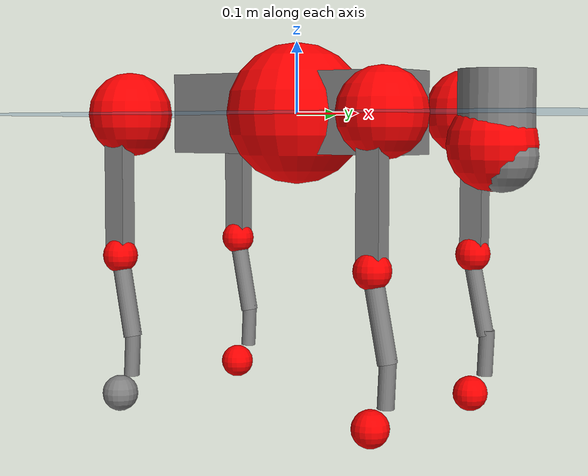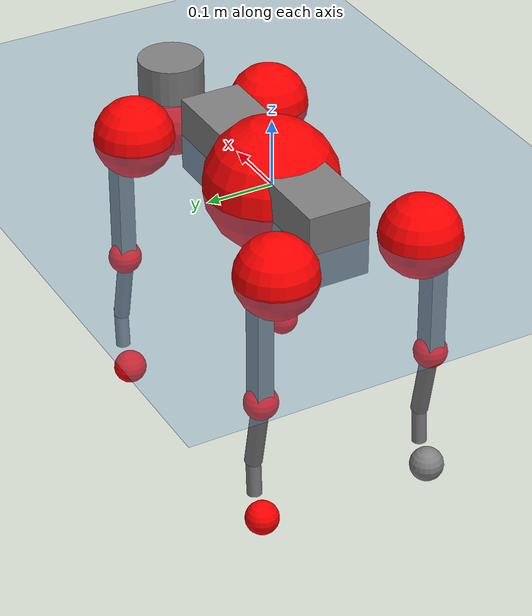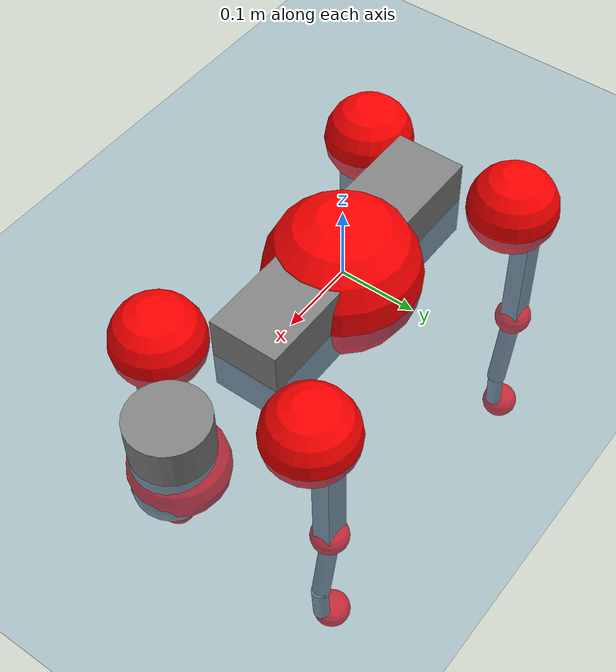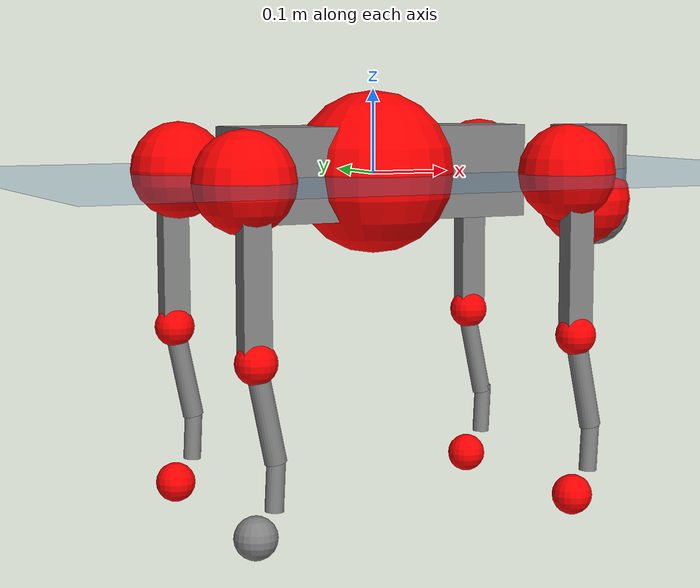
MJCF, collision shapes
<mujoco model="go2">
  <compiler angle="radian" assetdir="assets" balanceinertia="true" inertiafromgeom="false"/>

  <option timestep="0.005" density="1.2" viscosity="2e-05"/>

  <size nkey="1"/>

  <visual>
    <quality shadowsize="8192"/>
    <map shadowclip="0.5"/>
  </visual>

  <default>
    <default class="/">
      <geom contype="0" conaffinity="0" group="1" solref="-1000 -80"/>
      <site size="0.01 0.005 0.005" group="5"/>
      <general forcelimited="true" biastype="affine" gainprm="20" biasprm="0 -20 -0.5"/>
      <default class="go2">
        <joint armature="0.01" damping="0.01" frictionloss="0.2"/>
        <geom condim="1" margin="0.001"/>
        <default class="visual">
          <geom type="mesh" group="2"/>
        </default>
        <default class="collision">
          <geom group="3"/>
          <default class="foot">
            <geom size="0.022 0 0" condim="6" priority="1" friction="0.8 0.02 0.01" solimp="0.015 1 0.022"/>
          </default>
        </default>
        <default class="reward_collision_sphere">
          <geom group="5" rgba="1 0 0 1"/>
        </default>
      </default>
    </default>
  </default>

  <asset>
    <texture type="skybox" colorspace="auto" name="//unnamed_texture_0" builtin="gradient" rgb1="0.95 0.95 0.95" rgb2="0.95 0.95 0.95" width="100" height="600"/>
    <texture type="2d" colorspace="auto" name="texplane" builtin="checker" rgb1="0.345 0.575 0.748" rgb2="0.345 0.575 0.748" markrgb="1 1 1" width="512" height="512"/>
    <material name="MatPlane" class="/" texture="texplane" texuniform="true" texrepeat="2 2" specular="0.9"/>
    <material name="metal" class="/" rgba="0.9 0.95 0.95 1"/>
    <material name="black" class="/" rgba="0 0 0 1"/>
    <material name="white" class="/"/>
    <material name="gray" class="/" rgba="0.671705 0.692426 0.77427 1"/>
    <mesh name="base_0" class="/" file="base_0.obj"/>
    <mesh name="base_1" class="/" file="base_1.obj"/>
    <mesh name="base_2" class="/" file="base_2.obj"/>
    <mesh name="base_3" class="/" file="base_3.obj"/>
    <mesh name="base_4" class="/" file="base_4.obj"/>
    <mesh name="hip_0" class="/" file="hip_0.obj"/>
    <mesh name="hip_1" class="/" file="hip_1.obj"/>
    <mesh name="thigh_0" class="/" file="thigh_0.obj"/>
    <mesh name="thigh_1" class="/" file="thigh_1.obj"/>
    <mesh name="thigh_mirror_0" class="/" file="thigh_mirror_0.obj"/>
    <mesh name="thigh_mirror_1" class="/" file="thigh_mirror_1.obj"/>
    <mesh name="calf_0" class="/" file="calf_0.obj"/>
    <mesh name="calf_1" class="/" file="calf_1.obj"/>
    <mesh name="calf_mirror_0" class="/" file="calf_mirror_0.obj"/>
    <mesh name="calf_mirror_1" class="/" file="calf_mirror_1.obj"/>
    <mesh name="foot" class="/" file="foot.obj"/>
  </asset>

  <worldbody>
    <geom name="floor" class="/" size="100 100 0.125" type="plane" group="0" material="MatPlane"/>
    <light name="toplight_shadow" class="/" pos="0 0 5" dir="0.0990148 0.0990148 -0.990148" type="directional" ambient="0.04 0.04 0.04" diffuse="0.55 0.55 0.55" specular="0.12 0.12 0.12"/>
    <light name="toplight_fill" class="/" pos="0 0 5" dir="0.0990148 0.0990148 -0.990148" type="directional" castshadow="false" ambient="0.04 0.04 0.04" diffuse="0.3 0.3 0.3" specular="0.08 0.08 0.08"/>
    <body name="trunk" childclass="go2" pos="0.000334924 -0.000193981 0.000931752" quat="1 4.56051e-05 -6.84922e-05 7.66733e-05">
      <inertial pos="0.0232249 -0.00218042 -0.00436576" quat="-0.000155902 0.712426 -0.00370102 0.701737" mass="6.34868" diaginertia="0.145508 0.0693242 0.0159088"/>
      <joint name="//unnamed_joint_0" type="free" armature="0" damping="0" frictionloss="0"/>
      <geom name="//unnamed_geom_1" class="visual" material="black" mesh="base_0"/>
      <geom name="//unnamed_geom_2" class="visual" material="black" mesh="base_1"/>
      <geom name="//unnamed_geom_3" class="visual" material="black" mesh="base_2"/>
      <geom name="//unnamed_geom_4" class="visual" material="white" mesh="base_3"/>
      <geom name="//unnamed_geom_5" class="visual" material="gray" mesh="base_4"/>
      <geom name="trunk_1" class="collision" size="0.183892 0.0457041 0.0557247" type="box"/>
      <geom name="trunk_2" class="collision" size="0.0488813 0.0439932" pos="0.306412 0 0.00920037" type="cylinder"/>
      <geom name="trunk_3" class="collision" size="0.0459485" pos="0.315013 0 -0.0552022"/>
      <geom name="//unnamed_geom_9" class="reward_collision_sphere" size="0.0977627"/>
      <geom name="//unnamed_geom_10" class="reward_collision_sphere" size="0.0586576" pos="0.301037 0 -0.0414017"/>
      <site name="imu" pos="-0.0301994 0.00167091 0.040552" size="0.00977627"/>
      <camera name="track" pos="0 -1.87543 0" quat="0.707107 0.707107 0 0" mode="trackcom"/>
      <camera name="ego_camera" pos="0.335441 0 0.0414017" quat="-0.5 -0.5 0.5 0.5"/>
      <body name="FL_hip" pos="0.207277 0.0440408 0.000593622" quat="1 9.72483e-05 -4.78691e-05 -3.64519e-05">
        <inertial pos="-0.00591605 0.000956541 0.000478021" quat="0.505983 0.491258 0.503969 0.498661" mass="0.629496" diaginertia="0.00125869 0.000435189 0.000314501"/>
        <joint name="FL_hip_joint" pos="0 0 0" axis="0.999998 0.00181973 -0.000919106" stiffness="0.014239" range="-1.03534 1.04974" armature="0.00954286" damping="0.0122923" frictionloss="0.197545"/>
        <geom name="//unnamed_geom_11" class="visual" material="metal" mesh="hip_0"/>
        <geom name="//unnamed_geom_12" class="visual" material="gray" mesh="hip_1"/>
        <geom name="//unnamed_geom_13" class="collision" size="0.0449708 0.0195525" pos="0 0.075017 0" quat="0.707107 0.707107 0 0" type="cylinder"/>
        <geom name="//unnamed_geom_14" class="reward_collision_sphere" size="0.0586576" pos="0 0.0656399 0"/>
        <body name="FL_thigh" pos="-9.123e-05 0.0886871 0.000334633" quat="0.999999 -0.00050651 0.000256069 0.00102662">
          <inertial pos="-0.0045203 -0.0184102 -0.0305661" quat="0.829592 0.0887176 -0.0170022 0.551015" mass="1.06552" diaginertia="0.00835027 0.00433879 0.000576935"/>
          <joint name="FL_thigh_joint" pos="0 0 0" axis="0.00454291 0.999963 -0.00723892" stiffness="0.000912966" range="-1.57312 3.45443" armature="0.0108932" damping="0.00797191" frictionloss="0.199894"/>
          <geom name="//unnamed_geom_15" class="visual" material="metal" mesh="thigh_0"/>
          <geom name="//unnamed_geom_16" class="visual" material="gray" mesh="thigh_1"/>
          <geom name="//unnamed_geom_17" class="collision" size="0.104117 0.0119759 0.0166197" pos="0 0 -0.0979839" quat="0.707107 0 0.707107 0" type="box"/>
          <body name="FL_calf" pos="-0.00135489 -0.000527452 -0.195777" quat="1 -1.0647e-05 -0.000330866 5.55127e-05">
            <inertial pos="0.00522147 -0.000347925 -0.130623" quat="0.710768 -8.32032e-05 0.000343946 0.703426" mass="0.222795" diaginertia="0.00213735 0.00108715 3.48116e-05"/>
            <joint name="FL_calf_joint" pos="0 0 0" axis="0.00362111 0.999992 0.00185646" stiffness="0.00466726" range="-2.67842 -0.814467" armature="0.0100347" damping="0" frictionloss="0.186076"/>
            <geom name="//unnamed_geom_18" class="visual" material="gray" mesh="calf_0"/>
            <geom name="//unnamed_geom_19" class="visual" material="black" mesh="calf_1"/>
            <geom name="FL_calf0" class="collision" size="0.0117315 0.0586576" pos="0.00860105 0 -0.0552022" quat="0.994493 0 -0.104807 0" type="cylinder"/>
            <geom name="//unnamed_geom_21" class="collision" size="0.0107539 0.0317729" pos="0.0215026 0 -0.136165" quat="0.999688 0 0.0249974 0" type="cylinder"/>
            <geom name="//unnamed_geom_22" class="visual" pos="0 0 -0.195968" quat="1 0 0 0" material="black" mesh="foot"/>
            <geom name="FL_foot" class="foot" size="0.0176097" pos="-0.00215026 0 -0.195968"/>
            <geom name="//unnamed_geom_24" class="reward_collision_sphere" size="0.0244407"/>
            <geom name="//unnamed_geom_25" class="reward_collision_sphere" size="0.0244407" pos="-0.00215026 0 -0.195968"/>
            <site name="FL_foot" class="foot" pos="-0.00215026 0 -0.195968" size="0.00977627"/>
          </body>
        </body>
      </body>
      <body name="FR_hip" pos="0.206129 -0.0422563 -0.0010577" quat="1 5.10363e-05 -5.49183e-05 6.23347e-05">
        <inertial pos="-0.00625326 -0.0027532 0.000574992" quat="0.495037 0.507431 0.494166 0.503242" mass="0.639088" diaginertia="0.00125774 0.000431958 0.000311164"/>
        <joint name="FR_hip_joint" pos="0 0 0" axis="0.999993 -0.00360681 4.12367e-05" range="-1.0417 1.07801" armature="0.0102392" damping="0.015935" frictionloss="0.187493"/>
        <geom name="//unnamed_geom_26" class="visual" pos="0 1.53983e-10 6.60466e-09" quat="4.63268e-05 1 0 0" material="metal" mesh="hip_0"/>
        <geom name="//unnamed_geom_27" class="visual" pos="0 2.49625e-10 -1.63358e-08" quat="4.63268e-05 1 0 0" material="gray" mesh="hip_1"/>
        <geom name="//unnamed_geom_28" class="collision" size="0.0449708 0.0195525" pos="0 -0.075017 0" quat="0.707107 0.707107 0 0" type="cylinder"/>
        <geom name="//unnamed_geom_29" class="reward_collision_sphere" size="0.0586576" pos="0 -0.0656399 0"/>
        <body name="FR_thigh" pos="0.000404806 -0.0891043 -0.000266459" quat="1 -5.1049e-05 1.57005e-05 -5.48127e-05">
          <inertial pos="-0.00461158 0.0210446 -0.0280252" quat="0.553833 -0.0199446 0.0889451 0.827623" mass="1.06391" diaginertia="0.00851804 0.00423398 0.000579177"/>
          <joint name="FR_thigh_joint" pos="0 0 0" axis="-0.0030983 -0.999995 -0.000378318" stiffness="0.0105297" range="-3.49118 1.55134" armature="0.00900056" damping="0.0193009" frictionloss="0.196809"/>
          <geom name="//unnamed_geom_30" class="visual" material="metal" mesh="thigh_mirror_0"/>
          <geom name="//unnamed_geom_31" class="visual" material="gray" mesh="thigh_mirror_1"/>
          <geom name="//unnamed_geom_32" class="collision" size="0.104117 0.0119759 0.0166197" pos="0 0 -0.0979839" quat="0.707107 0 0.707107 0" type="box"/>
          <body name="FR_calf" pos="0.00055933 0.000124884 -0.193759" quat="1 -1.99716e-05 -0.000125441 0.000107417">
            <inertial pos="0.00682223 0.000923732 -0.130219" quat="0.702308 -0.00693924 -0.00233932 0.711835" mass="0.232017" diaginertia="0.00222949 0.00109736 3.61166e-05"/>
            <joint name="FR_calf_joint" pos="0 0 0" axis="-0.00135981 -0.999991 0.00409107" range="0.818379 2.70718" armature="0.00969234" damping="0.00130941" frictionloss="0.205623"/>
            <geom name="//unnamed_geom_33" class="visual" material="gray" mesh="calf_mirror_0"/>
            <geom name="//unnamed_geom_34" class="visual" material="black" mesh="calf_mirror_1"/>
            <geom name="FR_calf0" class="collision" size="0.0127091 0.0586576" pos="0.0107513 0 -0.0552022" quat="0.995004 0 -0.0998334 0" type="cylinder"/>
            <geom name="//unnamed_geom_36" class="collision" size="0.0107539 0.0317729" pos="0.0215026 0 -0.136165" quat="0.999688 0 0.0249974 0" type="cylinder"/>
            <geom name="//unnamed_geom_37" class="visual" pos="0 0 -0.195968" quat="1 0 0 0" material="black" mesh="foot"/>
            <geom name="FR_foot" class="foot" size="0.0204262" pos="-0.00215026 0 -0.195968"/>
            <geom name="//unnamed_geom_39" class="reward_collision_sphere" size="0.0244407"/>
            <geom name="//unnamed_geom_40" class="reward_collision_sphere" size="0.0244407" pos="-0.00215026 0 -0.195968"/>
            <site name="FR_foot" class="foot" pos="-0.00215026 0 -0.195968" size="0.00977627"/>
          </body>
        </body>
      </body>
      <body name="RL_hip" pos="-0.20812 0.0428385 0.0020111" quat="1 -0.00016739 -0.000286284 0.000466264">
        <inertial pos="0.0055118 0.00220567 8.03234e-05" quat="0.506954 0.496531 0.497838 0.49861" mass="0.622826" diaginertia="0.00128892 0.000441635 0.000318812"/>
        <joint name="RL_hip_joint" pos="0 0 0" axis="-0.999815 -0.0139029 -0.0133286" stiffness="0.00909167" range="-1.01884 1.0683" armature="0.00996506" damping="0.0150291" frictionloss="0.203939"/>
        <geom name="//unnamed_geom_41" class="visual" pos="-1.35111e-09 0 -2.64849e-07" quat="4.63268e-05 0 1 0" material="metal" mesh="hip_0"/>
        <geom name="//unnamed_geom_42" class="visual" pos="-2.19031e-09 0 -2.34883e-07" quat="4.63268e-05 0 1 0" material="gray" mesh="hip_1"/>
        <geom name="//unnamed_geom_43" class="collision" size="0.0449708 0.0195525" pos="0 0.075017 0" quat="0.707107 0.707107 0 0" type="cylinder"/>
        <geom name="//unnamed_geom_44" class="reward_collision_sphere" size="0.0586576" pos="0 0.0656399 0"/>
        <body name="RL_thigh" pos="-0.000239545 0.0905036 0.000959952" quat="1 -0.000271594 3.9955e-05 0.000932183">
          <inertial pos="-0.00385983 -0.0182309 -0.0311251" quat="0.828859 0.0871093 -0.0168143 0.552378" mass="1.04885" diaginertia="0.00861611 0.00422165 0.000592327"/>
          <joint name="RL_thigh_joint" pos="0 0 0" axis="0.0085714 0.999962 -0.00168239" stiffness="0.00325805" range="-0.53167 4.53916" armature="0.00982449" damping="0.0139565" frictionloss="0.199983"/>
          <geom name="//unnamed_geom_45" class="visual" material="metal" mesh="thigh_0"/>
          <geom name="//unnamed_geom_46" class="visual" material="gray" mesh="thigh_1"/>
          <geom name="//unnamed_geom_47" class="collision" size="0.104117 0.0119759 0.0166197" pos="0 0 -0.0979839" quat="0.707107 0 0.707107 0" type="box"/>
          <body name="RL_calf" pos="-0.00044179 -0.000980029 -0.195004" quat="1 -8.52738e-05 4.13971e-05 0.000160413">
            <inertial pos="0.00663223 0.0008846 -0.130401" quat="0.710908 6.53188e-05 -0.00301639 0.703278" mass="0.228443" diaginertia="0.00213022 0.00105439 3.46775e-05"/>
            <joint name="RL_calf_joint" pos="0 0 0" axis="-0.000804379 0.999939 0.0109839" stiffness="0.00832077" range="-2.67745 -0.841555" armature="0.0109008" damping="0" frictionloss="0.195541"/>
            <geom name="//unnamed_geom_48" class="visual" material="gray" mesh="calf_0"/>
            <geom name="//unnamed_geom_49" class="visual" material="black" mesh="calf_1"/>
            <geom name="RL_calf0" class="collision" size="0.0127091 0.0586576" pos="0.0107513 0 -0.0552022" quat="0.995004 0 -0.0998334 0" type="cylinder"/>
            <geom name="//unnamed_geom_51" class="collision" size="0.0107539 0.0317729" pos="0.0215026 0 -0.136165" quat="0.999688 0 0.0249974 0" type="cylinder"/>
            <geom name="//unnamed_geom_52" class="visual" pos="0 0 -0.195968" quat="1 0 0 0" material="black" mesh="foot"/>
            <geom name="RL_foot" class="foot" size="0.0194815" pos="-0.00215026 0 -0.195968"/>
            <geom name="//unnamed_geom_54" class="reward_collision_sphere" size="0.0244407"/>
            <geom name="//unnamed_geom_55" class="reward_collision_sphere" size="0.0244407" pos="-0.00215026 0 -0.195968"/>
            <site name="RL_foot" class="foot" pos="-0.00215026 0 -0.195968" size="0.00977627"/>
          </body>
        </body>
      </body>
      <body name="RR_hip" pos="-0.209811 -0.0445978 -0.00169125" quat="0.999999 -0.000524356 0.000888765 -0.000600598">
        <inertial pos="0.00609232 -0.00101246 -0.000333876" quat="0.498181 0.497383 0.498197 0.506187" mass="0.640452" diaginertia="0.00128311 0.000430936 0.000328842"/>
        <joint name="RR_hip_joint" pos="0 0 0" axis="-0.999999 0.00134298 -6.01824e-05" stiffness="0.00306946" range="-1.04443 1.05134" armature="0.0106845" damping="0.00628403" frictionloss="0.193994"/>
        <geom name="//unnamed_geom_56" class="visual" pos="1.34635e-09 1.53983e-10 -2.71454e-07" quat="2.14617e-09 4.63268e-05 4.63268e-05 -1" material="metal" mesh="hip_0"/>
        <geom name="//unnamed_geom_57" class="visual" pos="2.20208e-09 2.49625e-10 -2.18548e-07" quat="2.14617e-09 4.63268e-05 4.63268e-05 -1" material="gray" mesh="hip_1"/>
        <geom name="//unnamed_geom_58" class="collision" size="0.0449708 0.0195525" pos="0 -0.075017 0" quat="0.707107 0.707107 0 0" type="cylinder"/>
        <geom name="//unnamed_geom_59" class="reward_collision_sphere" size="0.0586576" pos="0 -0.0656399 0"/>
        <body name="RR_thigh" pos="0.000437679 -0.0892412 -0.000212828" quat="1 -0.000430545 0.000357919 0.000359012">
          <inertial pos="-0.00355886 0.020259 -0.0300698" quat="0.552575 -0.0201366 0.0849076 0.828883" mass="1.05791" diaginertia="0.00844043 0.00425513 0.00057503"/>
          <joint name="RR_thigh_joint" pos="0 0 0" axis="-0.00456415 -0.999972 -0.00597997" stiffness="0.00206936" range="-4.53362 0.571386" armature="0.00870574" damping="0.0177479" frictionloss="0.190932"/>
          <geom name="//unnamed_geom_60" class="visual" material="metal" mesh="thigh_mirror_0"/>
          <geom name="//unnamed_geom_61" class="visual" material="gray" mesh="thigh_mirror_1"/>
          <geom name="//unnamed_geom_62" class="collision" size="0.104117 0.0119759 0.0166197" pos="0 0 -0.0979839" quat="0.707107 0 0.707107 0" type="box"/>
          <body name="RR_calf" pos="0.00148263 -0.000766994 -0.196836" quat="1 -0.000154618 -0.000115252 -0.000190471">
            <inertial pos="0.00716199 0.00119213 -0.130539" quat="0.703248 -0.00480871 0.00124895 0.710927" mass="0.225937" diaginertia="0.00211709 0.00105047 3.47754e-05"/>
            <joint name="RR_calf_joint" pos="0 0 0" axis="-0.000907433 -0.999999 -0.0011141" range="0.870726 2.71089" armature="0.00941239" damping="0.0118599" frictionloss="0.190613"/>
            <geom name="//unnamed_geom_63" class="visual" material="gray" mesh="calf_mirror_0"/>
            <geom name="//unnamed_geom_64" class="visual" material="black" mesh="calf_mirror_1"/>
            <geom name="RR_calf0" class="collision" size="0.0127091 0.0586576" pos="0.0107513 0 -0.0552022" quat="0.995004 0 -0.0998334 0" type="cylinder"/>
            <geom name="//unnamed_geom_66" class="collision" size="0.0107539 0.0317729" pos="0.0215026 0 -0.136165" quat="0.999688 0 0.0249974 0" type="cylinder"/>
            <geom name="//unnamed_geom_67" class="visual" pos="0 0 -0.195968" quat="1 0 0 0" material="black" mesh="foot"/>
            <geom name="RR_foot" class="foot" size="0.0251155" pos="-0.00215026 0 -0.195968"/>
            <geom name="//unnamed_geom_69" class="reward_collision_sphere" size="0.0244407"/>
            <geom name="//unnamed_geom_70" class="reward_collision_sphere" size="0.0244407" pos="-0.00215026 0 -0.195968"/>
            <site name="RR_foot" class="foot" pos="-0.00215026 0 -0.195968" size="0.00977627"/>
          </body>
        </body>
      </body>
    </body>
  </worldbody>

  <contact>
    <pair class="/" geom1="floor" geom2="FL_foot" name="//unnamed_contact_0"/>
    <pair class="/" geom1="floor" geom2="FR_foot" name="//unnamed_contact_1"/>
    <pair class="/" geom1="floor" geom2="RL_foot" name="//unnamed_contact_2"/>
    <pair class="/" geom1="floor" geom2="RR_foot" name="//unnamed_contact_3"/>
  </contact>

  <actuator>
    <general name="FL_hip" class="/" joint="FL_hip_joint" forcerange="-22.3739 22.3739" gainprm="19.6618" biasprm="0 -19.6618 -0.492452"/>
    <general name="FL_thigh" class="/" joint="FL_thigh_joint" forcerange="-23.19 23.19" gainprm="19.6618" biasprm="0 -19.6618 -0.492452"/>
    <general name="FL_calf" class="/" joint="FL_calf_joint" forcerange="-44.6845 44.6845" gainprm="19.6618" biasprm="0 -19.6618 -0.492452"/>
    <general name="FR_hip" class="/" joint="FR_hip_joint" forcerange="-23.7068 23.7068" gainprm="19.6618" biasprm="0 -19.6618 -0.492452"/>
    <general name="FR_thigh" class="/" joint="FR_thigh_joint" forcerange="-23.0859 23.0859" gainprm="19.6618" biasprm="0 -19.6618 -0.492452"/>
    <general name="FR_calf" class="/" joint="FR_calf_joint" forcerange="-43.0589 43.0589" gainprm="19.6618" biasprm="0 -19.6618 -0.492452"/>
    <general name="RL_hip" class="/" joint="RL_hip_joint" forcerange="-24.0407 24.0407" gainprm="19.6618" biasprm="0 -19.6618 -0.492452"/>
    <general name="RL_thigh" class="/" joint="RL_thigh_joint" forcerange="-23.4303 23.4303" gainprm="19.6618" biasprm="0 -19.6618 -0.492452"/>
    <general name="RL_calf" class="/" joint="RL_calf_joint" forcerange="-42.6517 42.6517" gainprm="19.6618" biasprm="0 -19.6618 -0.492452"/>
    <general name="RR_hip" class="/" joint="RR_hip_joint" forcerange="-23.8475 23.8475" gainprm="19.6618" biasprm="0 -19.6618 -0.492452"/>
    <general name="RR_thigh" class="/" joint="RR_thigh_joint" forcerange="-22.2906 22.2906" gainprm="19.6618" biasprm="0 -19.6618 -0.492452"/>
    <general name="RR_calf" class="/" joint="RR_calf_joint" forcerange="-47.553 47.553" gainprm="19.6618" biasprm="0 -19.6618 -0.492452"/>
  </actuator>

  <sensor>
    <gyro site="imu" name="imu_angular_velocity"/>
    <velocimeter site="imu" name="imu_linear_velocity"/>
    <framelinvel objtype="site" objname="FL_foot" name="FL_foot_global_linear_velocity"/>
    <framelinvel objtype="site" objname="FR_foot" name="FR_foot_global_linear_velocity"/>
    <framelinvel objtype="site" objname="RL_foot" name="RL_foot_global_linear_velocity"/>
    <framelinvel objtype="site" objname="RR_foot" name="RR_foot_global_linear_velocity"/>
  </sensor>

  <keyframe>
    <key name="home" qpos="0 0 0.325 1 0 0 0 0.1 0.8 -1.5 -0.1 -0.8 1.5 -0.1 0.8 -1.5 0.1 -0.8 1.5"/>
  </keyframe>
</mujoco>
